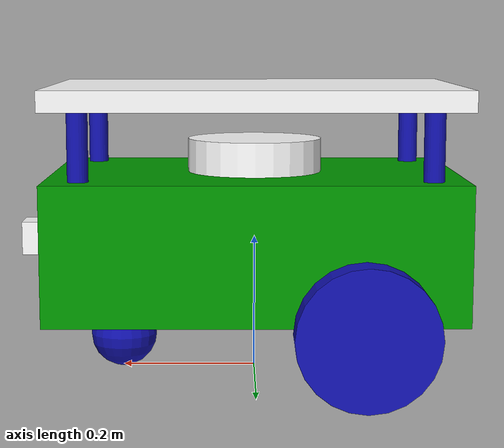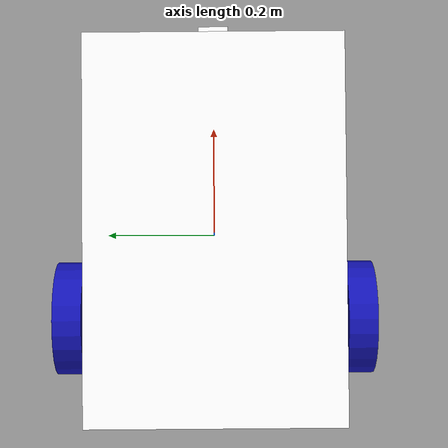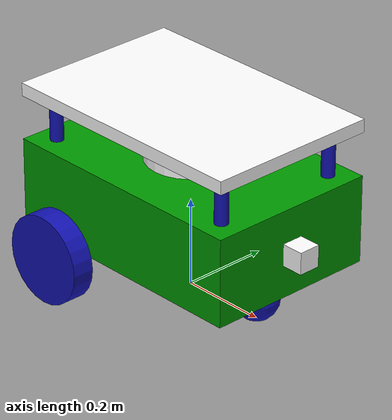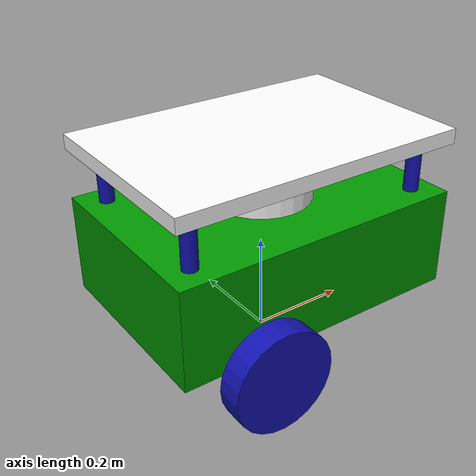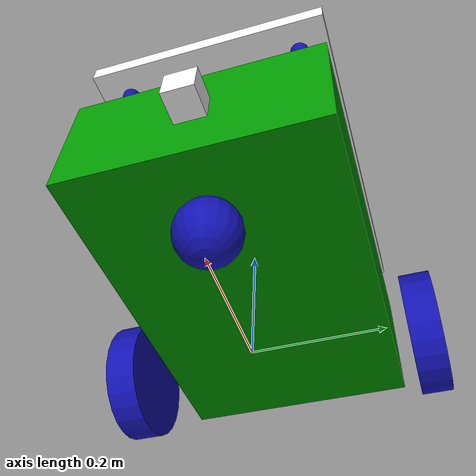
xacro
<?xml version="1.0"?>
<robot xmlns:xacro="http://ros.org/wiki/xacro" name="warehouse_robot">

    <!-- Materials -->
    <material name="grey">
        <color rgba="0.07 0.07 0.7 1"/>
    </material>
    <material name="green">
        <color rgba="0.0 0.6 0.0 1.0"/>
    </material>
    <material name="white">
        <color rgba="1.0 1.0 1.0 1.0"/>
    </material>

    <!-- Base Links -->
    <link name="base_footprint"/>

    <link name="base_link">
        <visual>
            <geometry>
                <box size="0.6 0.4 0.2"/>
            </geometry>
            <origin xyz="0 0 0.1" rpy="0 0 0"/>
            <material name="green"/>
        </visual>
        <collision>
            <geometry>
                <box size="0.6 0.4 0.2"/>
            </geometry>
            <origin xyz="0 0 0.1" rpy="0 0 0"/>
        </collision>
        <inertial>
            <mass value="10.0"/>
            <origin xyz="0 0 0.1"/>
            <inertia ixx="0.1" ixy="0.0" ixz="0.0" iyy="0.1" iyz="0.0" izz="0.1"/>
        </inertial>
    </link>

    <!-- Lidar -->
    <link name="lidar">
        <visual>
            <geometry>
                <cylinder radius="0.1" length="0.05"/>
            </geometry>
            <origin xyz="0.0 0.0 0.0" rpy="0.0 0.0 0.0"/>
            <material name="white"/>
        </visual>
        <collision>
            <geometry>
                <cylinder radius="0.1" length="0.05"/>
            </geometry>
            <origin xyz="0.0 0.0 0.0" rpy="0.0 0.0 0.0"/>
        </collision>
        <inertial>
            <mass value="0.1"/>
            <origin xyz="0.0 0.0 0.0" rpy="0.0 0.0 0.0"/>
            <inertia ixx="0.01" iyy="0.01" izz="0.01" ixy="0.0" ixz="0.0" iyz="0.0"/>
        </inertial>
    </link>

        <!-- IMU Sensor -->
    <link name="imu_link">
        <inertial>
            <mass value="0.01"/>
            <origin xyz="0 0 0"/>
            <inertia ixx="0.001" ixy="0.0" ixz="0.0" iyy="0.001" iyz="0.0" izz="0.001"/>
        </inertial>
    </link>

    <!-- Camera -->
    <link name="camera">
        <visual>
            <geometry>
                <box size="0.1 0.05 0.05"/>
            </geometry>
            <origin xyz="0 0 0" rpy="0 0 0"/>
            <material name="white"/>
        </visual>
        <collision>
            <geometry>
                <box size="0.1 0.05 0.05"/>
            </geometry>
            <origin xyz="0 0 0" rpy="0 0 0"/>
        </collision>
        <inertial>
            <mass value="0.05"/>
            <origin xyz="0 0 0" rpy="0 0 0"/>
            <inertia ixx="0.0001" iyy="0.0001" izz="0.0001" ixy="0" ixz="0" iyz="0"/>
        </inertial>
    </link>

    <!-- Carrying Plate -->
    <link name="carrying_plate">
        <!-- Pillars -->
        <visual>
            <geometry>
                <cylinder radius="0.015" length="0.1"/>
            </geometry>
            <origin xyz="0.25 0.15 0.05" rpy="0 0 0"/>
            <material name="grey"/>
        </visual>
        <visual>
            <geometry>
                <cylinder radius="0.015" length="0.1"/>
            </geometry>
            <origin xyz="0.25 -0.15 0.05" rpy="0 0 0"/>
            <material name="grey"/>
        </visual>
        <visual>
            <geometry>
                <cylinder radius="0.015" length="0.1"/>
            </geometry>
            <origin xyz="-0.25 0.15 0.05" rpy="0 0 0"/>
            <material name="grey"/>
        </visual>
        <visual>
            <geometry>
                <cylinder radius="0.015" length="0.1"/>
            </geometry>
            <origin xyz="-0.25 -0.15 0.05" rpy="0 0 0"/>
            <material name="grey"/>
        </visual>

        <!-- Plate -->
        <visual>
            <geometry>
                <box size="0.6 0.4 0.03"/>
            </geometry>
            <origin xyz="0 0 0.115" rpy="0 0 0"/>
            <material name="white"/>
        </visual>
        <collision>
            <geometry>
                <box size="0.6 0.4 0.03"/>
            </geometry>
            <origin xyz="0 0 0.115" rpy="0 0 0"/>
        </collision>
        <inertial>
            <mass value="0.5"/>
            <origin xyz="0 0 0.115" rpy="0 0 0"/>
            <inertia ixx="0.01" iyy="0.01" izz="0.01" ixy="0" ixz="0" iyz="0"/>
        </inertial>
    </link>

    <!-- Wheels -->
    <!-- Left Wheel -->
    <link name="left_wheel">
        <visual>
            <geometry>
                <cylinder radius="0.1" length="0.05"/>
            </geometry>
            <origin xyz="0.0 0.0 0.0" rpy="1.57 0.0 0.0"/>
            <material name="grey"/>
        </visual>
        <collision>
            <geometry>
                <cylinder radius="0.1" length="0.05"/>
            </geometry>
            <origin xyz="0.0 0.0 0.0" rpy="1.57 0.0 0.0"/>
        </collision>
        <inertial>
            <mass value="0.2"/>
            <origin xyz="0 0 0" rpy="0 0 0"/>
            <inertia ixx="0.001" iyy="0.001" izz="0.001" ixy="0" ixz="0" iyz="0"/>
        </inertial>
    </link>

    <link name="right_wheel">
        <visual>
            <geometry>
                <cylinder radius="0.1" length="0.05"/>
            </geometry>
            <origin xyz="0.0 0.0 0.0" rpy="1.57 0 0"/>
            <material name="grey"/>
        </visual>
        <collision>
            <geometry>
                <cylinder radius="0.1" length="0.05"/>
            </geometry>
            <origin xyz="0.0 0.0 0.0" rpy="1.57 0.0 0.0"/>
        </collision>
        <inertial>
            <mass value="0.2"/>
            <origin xyz="0 0 0" rpy="0 0 0"/>
            <inertia ixx="0.001" iyy="0.001" izz="0.001" ixy="0" ixz="0" iyz="0"/>
        </inertial>
    </link>

    <link name="caster_wheel">
        <visual>
            <geometry>
                <sphere radius="0.05"/>
            </geometry>
            <origin xyz="0.0 0.0 0.0" rpy="0.0 0.0 0.0"/>
            <material name="grey"/>
        </visual>
        <collision>
            <geometry>
                <sphere radius="0.05"/>
            </geometry>
        </collision>
        <inertial>
            <mass value="0.1"/>
            <inertia ixx="0.001" ixy="0.0" ixz="0.0" iyy="0.001" iyz="0.0" izz="0.001"/>
        </inertial>
    </link>

    <!-- Joints -->
    <joint name="base_joint" type="fixed">
        <parent link="base_footprint"/>
        <child link="base_link"/>
        <origin xyz="0.0 0.0 0.1" rpy="0.0 0.0 0.0"/>
    </joint>

    <joint name="base_lidar_joint" type="fixed">
        <parent link="base_link"/>
        <child link="lidar"/>
        <origin xyz="0.0 0.0 0.225" rpy="0.0 0.0 0.0"/>
    </joint>

    <joint name="base_camera_joint" type="fixed">
        <parent link="base_link"/>
        <child link="camera"/>
        <origin xyz="0.3 0.0 0.1" rpy="0.0 0.0 0.0"/>
    </joint>

    <joint name="imu_joint" type="fixed">
        <parent link="base_link"/>
        <child link="imu_link"/>
        <origin xyz="0 0 0.1" rpy="0 0 0"/>
    </joint>

    <joint name="base_carrying_plate_joint" type="fixed">
        <parent link="base_link"/>
        <child link="carrying_plate"/>
        <origin xyz="0.0 0.0 0.2" rpy="0 0 0"/>
    </joint>

    <joint name="base_left_wheel_joint" type="continuous">
        <parent link="base_link"/>
        <child link="left_wheel"/>
        <origin xyz="-0.15 0.255 0.0" rpy="0.0 0.0 0.0"/>
        <axis xyz="0.0 1.0 0.0"/>
    </joint>

    <joint name="base_right_wheel_joint" type="continuous">
        <parent link="base_link"/>
        <child link="right_wheel"/>
        <origin xyz="-0.15 -0.255 0.0" rpy="0.0 0.0 0.0"/>
        <axis xyz="0 1 0"/>
    </joint>

    <joint name="base_caster_wheel_joint" type="fixed">
        <parent link="base_link"/>
        <child link="caster_wheel"/>
        <origin xyz="0.2 0.0 -0.05" rpy="0.0 0.0 0.0"/>
    </joint>

    <!-- Gazebo Plugin for ROS 2 Control -->
    <gazebo>
        <plugin name="gazebo_ros2_control" filename="libgazebo_ros2_control.so">
            <ros>
                <namespace>/</namespace>
            </ros>
            <parameters>$(find drive_bot)/config/controllers.yaml</parameters>
        </plugin>
    </gazebo>

    <!-- Gazebo Material for Links -->
    <gazebo reference="base_link">
        <material>Gazebo/Green</material>
    </gazebo>
    <gazebo reference="lidar">
        <material>Gazebo/White</material>
    </gazebo>
    <gazebo reference="camera">
        <material>Gazebo/White</material>
    </gazebo>

    <!-- Gazebo Sensors -->
    <gazebo reference="lidar">
        <sensor type="ray" name="lidar_sensor">
            <always_on>true</always_on>
            <update_rate>30</update_rate>
            <visualize>true</visualize>
            <ray>
                <scan>
                    <horizontal>
                        <samples>360</samples>
                        <resolution>1</resolution>
                        <min_angle>-3.1416</min_angle>
                        <max_angle>3.1416</max_angle>
                    </horizontal>
                </scan>
                <range>
                    <min>0.1</min>
                    <max>12.0</max>
                    <resolution>0.01</resolution>
                </range>
            </ray>
            <plugin name="lidar_plugin" filename="libgazebo_ros_ray_sensor.so">
                <ros>
                    <namespace>/</namespace>
                </ros>
                <topic_name>scan</topic_name>
                <frame_name>lidar</frame_name>
                <output_type>sensor_msgs/LaserScan</output_type>
            </plugin>
        </sensor>
    </gazebo>

    <gazebo reference="camera">
        <sensor type="camera" name="camera_sensor">
            <update_rate>30.0</update_rate>
            <camera name="front_camera">
                <horizontal_fov>1.0472</horizontal_fov>
                <image>
                    <width>640</width>
                    <height>480</height>
                    <format>R8G8B8</format>
                </image>
                <clip>
                    <near>0.05</near>
                    <far>100.0</far>
                </clip>
            </camera>
            <plugin name="camera_plugin" filename="libgazebo_ros_camera.so">
                <ros>
                    <namespace>/camera</namespace>
                </ros>
                <camera_name>front_camera</camera_name>
                <frame_name>camera</frame_name>
            </plugin>
        </sensor>
    </gazebo>

    <gazebo reference="imu_link">
        <sensor type="imu" name="imu_sensor">
            <always_on>true</always_on>
            <update_rate>200</update_rate>
            <imu>
                <noise>
                    <type>gaussian</type>
                    <rate>
                        <mean>0.0</mean>
                        <stddev>0.00017</stddev>
                    </rate>
                    <accel>
                        <mean>0.0</mean>
                        <stddev>0.0017</stddev>
                    </accel>
                </noise>
            </imu>
            <plugin name="imu_plugin" filename="libgazebo_ros_imu_sensor.so">
                <ros>
                    <namespace>/</namespace>
                </ros>
                <topic_name>imu/data</topic_name>
                <frame_name>imu_link</frame_name>
                <gravity>true</gravity>
            </plugin>
        </sensor>
    </gazebo>

</robot>
